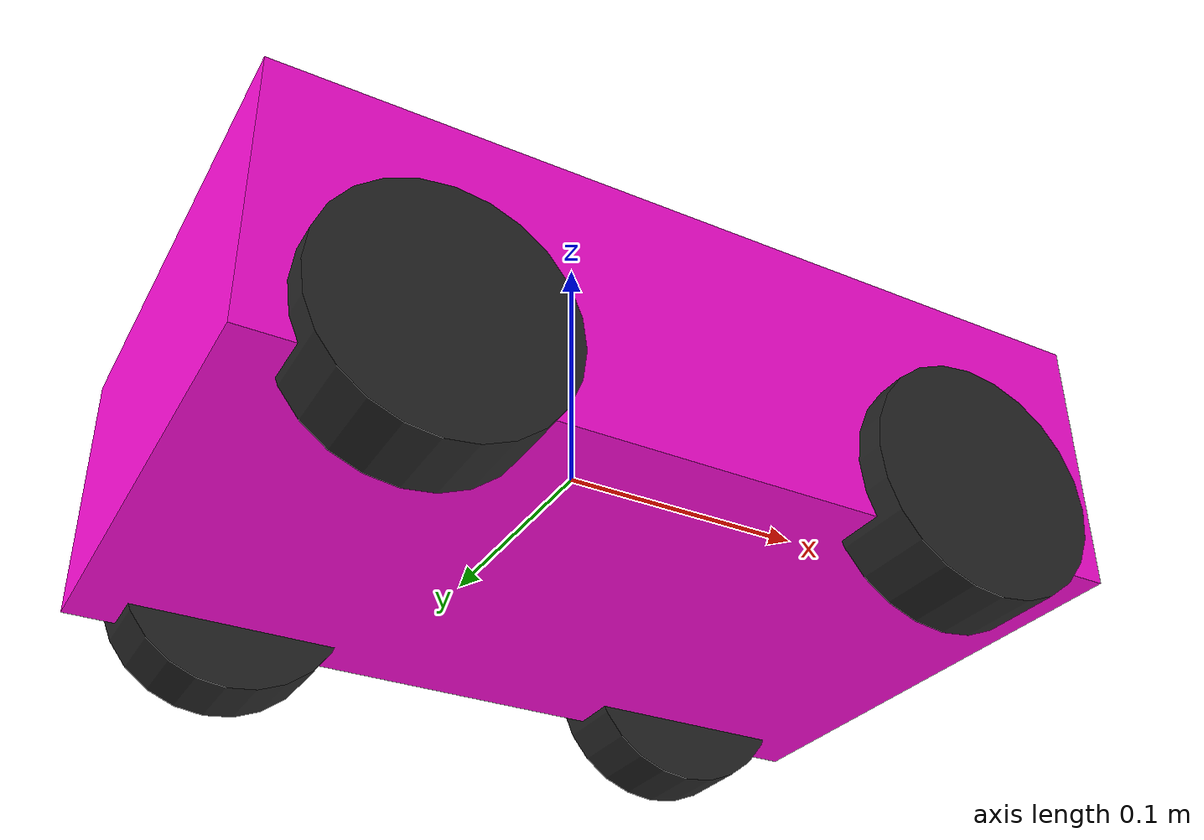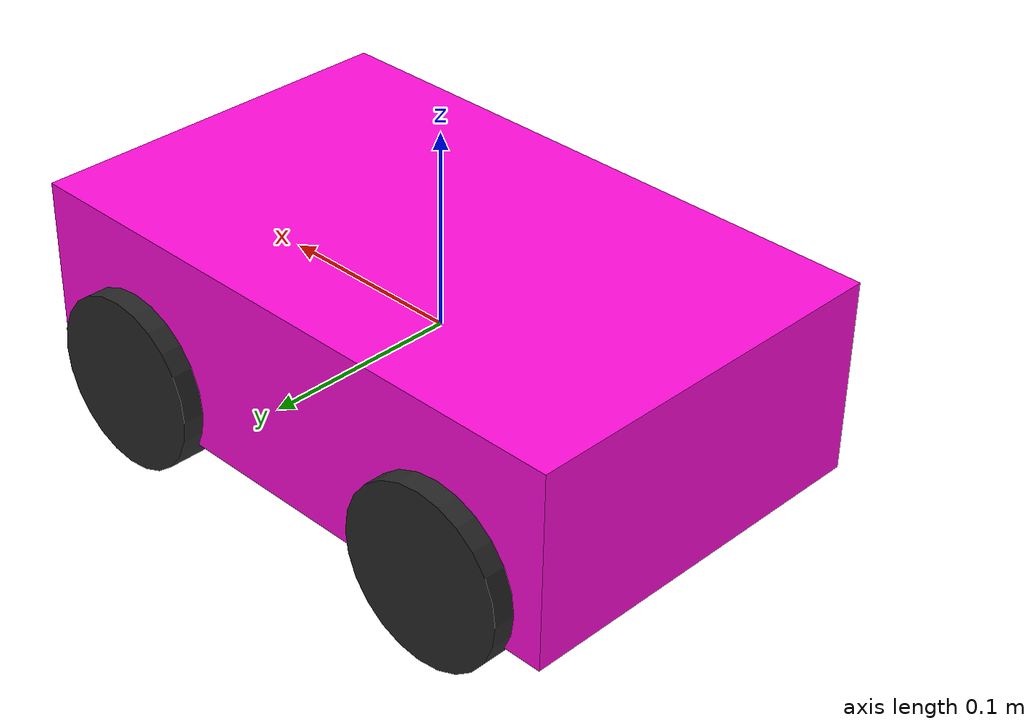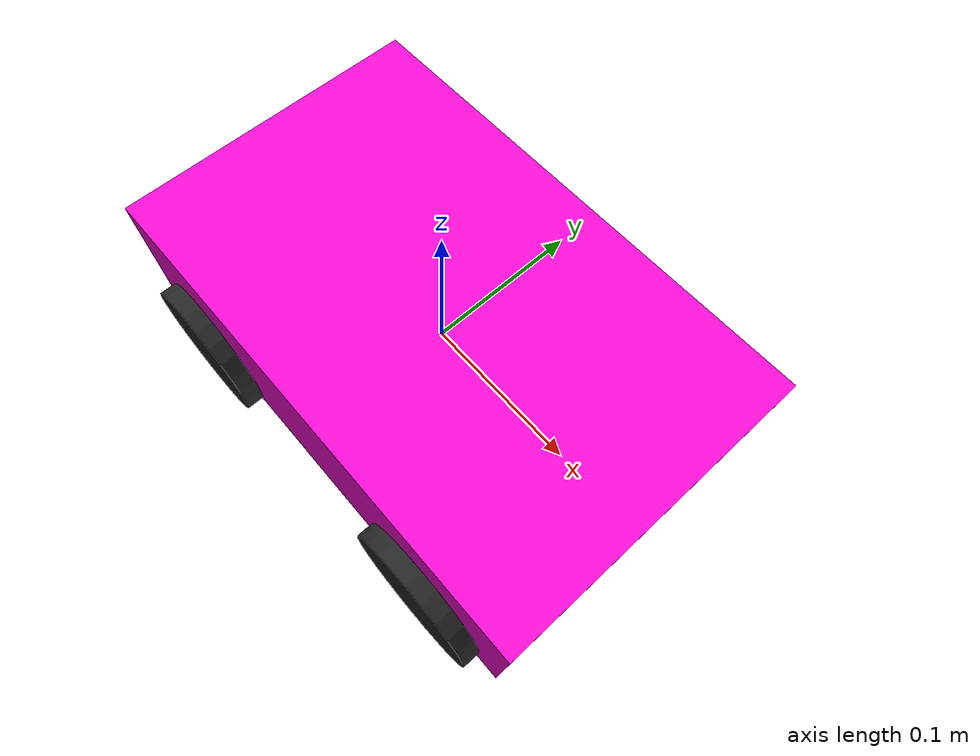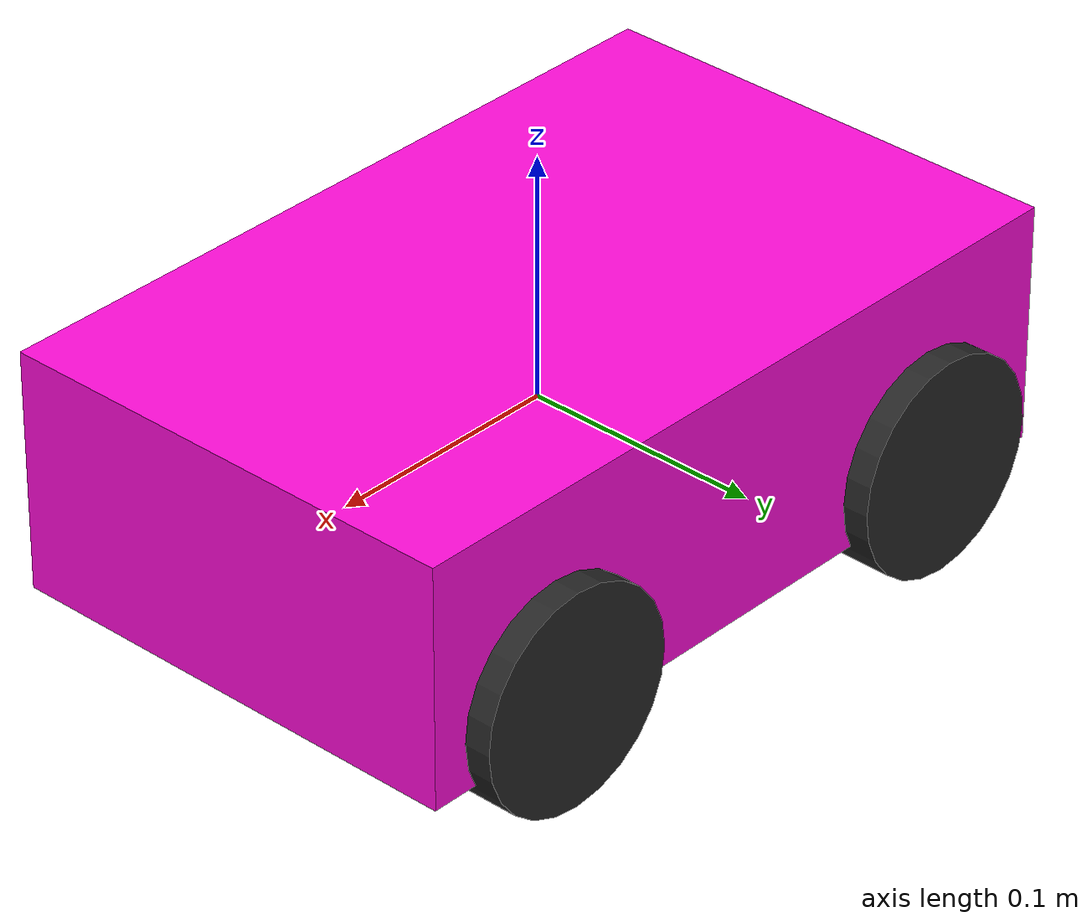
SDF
<?xml version="1.0" ?>
<sdf version="1.9">
  <model name="limo_pro">
    <static>false</static>

    <!-- ============ CHASSIS ============ -->
    <link name="base_link">
      <inertial>
        <mass>4.5</mass>
        <inertia>
          <ixx>0.045</ixx><iyy>0.08</iyy><izz>0.09</izz>
          <ixy>0</ixy><ixz>0</ixz><iyz>0</iyz>
        </inertia>
      </inertial>
      <visual name="chassis_visual">
        <geometry>
          <box><size>0.32 0.20 0.10</size></box>
        </geometry>
        <material>
          <ambient>1.0 0.0 0.85 1</ambient>
          <diffuse>1.0 0.05 0.85 1</diffuse>
          <emissive>0.35 0.0 0.3 1</emissive>
        </material>
      </visual>
      <collision name="chassis_collision">
        <geometry>
          <box><size>0.32 0.20 0.10</size></box>
        </geometry>
      </collision>

      <!-- ============ CAMERA SENSOR ============ -->
      <sensor name="camera" type="camera">
        <pose>0.16 0 0.12 0 0 0</pose>
        <always_on>true</always_on>
        <update_rate>30</update_rate>
        <topic>limo/camera</topic>
        <camera>
          <horizontal_fov>1.2</horizontal_fov>
          <image>
            <width>640</width>
            <height>480</height>
            <format>R8G8B8</format>
          </image>
          <clip><near>0.05</near><far>50</far></clip>
        </camera>
      </sensor>

      <!-- ============ LIDAR SENSOR ============ -->
      <sensor name="lidar" type="gpu_lidar">
        <pose>0.0 0 0.15 0 0 0</pose>
        <always_on>true</always_on>
        <update_rate>10</update_rate>
        <topic>limo/lidar</topic>
        <lidar>
          <scan>
            <horizontal>
              <samples>360</samples>
              <resolution>1</resolution>
              <min_angle>0</min_angle>
              <max_angle>6.28318</max_angle>
            </horizontal>
          </scan>
          <range>
            <min>0.1</min>
            <max>12.0</max>
            <resolution>0.01</resolution>
          </range>
        </lidar>
      </sensor>

      <!-- ============ IMU SENSOR ============ -->
      <sensor name="imu" type="imu">
        <pose>0 0 0.05 0 0 0</pose>
        <always_on>true</always_on>
        <update_rate>100</update_rate>
        <topic>limo/imu</topic>
        <imu>
          <angular_velocity>
            <x><noise type="gaussian"><mean>0</mean><stddev>0.001</stddev></noise></x>
            <y><noise type="gaussian"><mean>0</mean><stddev>0.001</stddev></noise></y>
            <z><noise type="gaussian"><mean>0</mean><stddev>0.001</stddev></noise></z>
          </angular_velocity>
          <linear_acceleration>
            <x><noise type="gaussian"><mean>0</mean><stddev>0.02</stddev></noise></x>
            <y><noise type="gaussian"><mean>0</mean><stddev>0.02</stddev></noise></y>
            <z><noise type="gaussian"><mean>0</mean><stddev>0.02</stddev></noise></z>
          </linear_acceleration>
        </imu>
      </sensor>
    </link>

    <!-- ============ REAR LEFT WHEEL ============ -->
    <link name="rear_left_wheel">
      <pose>-0.1 0.096 -0.03 -1.5707 0 0</pose>
      <inertial>
        <mass>0.3</mass>
        <inertia>
          <ixx>0.0002</ixx><iyy>0.0002</iyy><izz>0.0003</izz>
          <ixy>0</ixy><ixz>0</ixz><iyz>0</iyz>
        </inertia>
      </inertial>
      <visual name="visual">
        <geometry><cylinder><radius>0.045</radius><length>0.03</length></cylinder></geometry>
        <material><ambient>0.1 0.1 0.1 1</ambient><diffuse>0.15 0.15 0.15 1</diffuse></material>
      </visual>
      <collision name="collision">
        <geometry><cylinder><radius>0.045</radius><length>0.03</length></cylinder></geometry>
        <surface>
          <friction><ode><mu>1.0</mu><mu2>1.0</mu2></ode></friction>
        </surface>
      </collision>
    </link>
    <joint name="rear_left_wheel_joint" type="revolute">
      <parent>base_link</parent><child>rear_left_wheel</child>
      <axis><xyz>0 0 1</xyz></axis>
    </joint>

    <!-- ============ REAR RIGHT WHEEL ============ -->
    <link name="rear_right_wheel">
      <pose>-0.1 -0.096 -0.03 -1.5707 0 0</pose>
      <inertial>
        <mass>0.3</mass>
        <inertia>
          <ixx>0.0002</ixx><iyy>0.0002</iyy><izz>0.0003</izz>
          <ixy>0</ixy><ixz>0</ixz><iyz>0</iyz>
        </inertia>
      </inertial>
      <visual name="visual">
        <geometry><cylinder><radius>0.045</radius><length>0.03</length></cylinder></geometry>
        <material><ambient>0.1 0.1 0.1 1</ambient><diffuse>0.15 0.15 0.15 1</diffuse></material>
      </visual>
      <collision name="collision">
        <geometry><cylinder><radius>0.045</radius><length>0.03</length></cylinder></geometry>
        <surface>
          <friction><ode><mu>1.0</mu><mu2>1.0</mu2></ode></friction>
        </surface>
      </collision>
    </link>
    <joint name="rear_right_wheel_joint" type="revolute">
      <parent>base_link</parent><child>rear_right_wheel</child>
      <axis><xyz>0 0 1</xyz></axis>
    </joint>

    <!-- ============ FRONT LEFT STEERING + WHEEL ============ -->
    <link name="front_left_steering">
      <pose>0.1 0.096 -0.03 0 0 0</pose>
      <inertial><mass>0.05</mass>
        <inertia><ixx>0.00001</ixx><iyy>0.00001</iyy><izz>0.00001</izz>
          <ixy>0</ixy><ixz>0</ixz><iyz>0</iyz></inertia>
      </inertial>
    </link>
    <joint name="front_left_steering_joint" type="revolute">
      <parent>base_link</parent><child>front_left_steering</child>
      <axis><xyz>0 0 1</xyz>
        <limit><lower>-0.48</lower><upper>0.48</upper><effort>1e6</effort></limit>
      </axis>
    </joint>

    <link name="front_left_wheel">
      <pose>0.1 0.096 -0.03 -1.5707 0 0</pose>
      <inertial>
        <mass>0.3</mass>
        <inertia>
          <ixx>0.0002</ixx><iyy>0.0002</iyy><izz>0.0003</izz>
          <ixy>0</ixy><ixz>0</ixz><iyz>0</iyz>
        </inertia>
      </inertial>
      <visual name="visual">
        <geometry><cylinder><radius>0.045</radius><length>0.03</length></cylinder></geometry>
        <material><ambient>0.1 0.1 0.1 1</ambient><diffuse>0.15 0.15 0.15 1</diffuse></material>
      </visual>
      <collision name="collision">
        <geometry><cylinder><radius>0.045</radius><length>0.03</length></cylinder></geometry>
        <surface>
          <friction><ode><mu>1.0</mu><mu2>1.0</mu2></ode></friction>
        </surface>
      </collision>
    </link>
    <joint name="front_left_wheel_joint" type="revolute">
      <parent>front_left_steering</parent><child>front_left_wheel</child>
      <axis><xyz>0 0 1</xyz></axis>
    </joint>

    <!-- ============ FRONT RIGHT STEERING + WHEEL ============ -->
    <link name="front_right_steering">
      <pose>0.1 -0.096 -0.03 0 0 0</pose>
      <inertial><mass>0.05</mass>
        <inertia><ixx>0.00001</ixx><iyy>0.00001</iyy><izz>0.00001</izz>
          <ixy>0</ixy><ixz>0</ixz><iyz>0</iyz></inertia>
      </inertial>
    </link>
    <joint name="front_right_steering_joint" type="revolute">
      <parent>base_link</parent><child>front_right_steering</child>
      <axis><xyz>0 0 1</xyz>
        <limit><lower>-0.48</lower><upper>0.48</upper><effort>1e6</effort></limit>
      </axis>
    </joint>

    <link name="front_right_wheel">
      <pose>0.1 -0.096 -0.03 -1.5707 0 0</pose>
      <inertial>
        <mass>0.3</mass>
        <inertia>
          <ixx>0.0002</ixx><iyy>0.0002</iyy><izz>0.0003</izz>
          <ixy>0</ixy><ixz>0</ixz><iyz>0</iyz>
        </inertia>
      </inertial>
      <visual name="visual">
        <geometry><cylinder><radius>0.045</radius><length>0.03</length></cylinder></geometry>
        <material><ambient>0.1 0.1 0.1 1</ambient><diffuse>0.15 0.15 0.15 1</diffuse></material>
      </visual>
      <collision name="collision">
        <geometry><cylinder><radius>0.045</radius><length>0.03</length></cylinder></geometry>
        <surface>
          <friction><ode><mu>1.0</mu><mu2>1.0</mu2></ode></friction>
        </surface>
      </collision>
    </link>
    <joint name="front_right_wheel_joint" type="revolute">
      <parent>front_right_steering</parent><child>front_right_wheel</child>
      <axis><xyz>0 0 1</xyz></axis>
    </joint>

    <!-- ============ ACKERMANN STEERING PLUGIN ============ -->
    <plugin filename="gz-sim-ackermann-steering-system"
            name="gz::sim::systems::AckermannSteering">
      <left_joint>front_left_wheel_joint</left_joint>
      <right_joint>front_right_wheel_joint</right_joint>
      <left_steering_joint>front_left_steering_joint</left_steering_joint>
      <right_steering_joint>front_right_steering_joint</right_steering_joint>
      <kingpin_width>0.192</kingpin_width>
      <steering_limit>0.48</steering_limit>
      <steer_p_gain>8.0</steer_p_gain>
      <wheel_base>0.2</wheel_base>
      <wheel_separation>0.192</wheel_separation>
      <wheel_radius>0.045</wheel_radius>
      <topic>limo/cmd_vel</topic>
      <odom_topic>limo/odom</odom_topic>
      <tf_topic>limo/tf</tf_topic>
      <frame_id>odom</frame_id>
      <child_frame_id>base_link</child_frame_id>
      <odom_publish_frequency>20</odom_publish_frequency>
    </plugin>

    <!-- Joint state publisher for odometry -->
    <plugin filename="gz-sim-joint-state-publisher-system"
            name="gz::sim::systems::JointStatePublisher">
      <topic>limo/joint_states</topic>
    </plugin>

  </model>
</sdf>
